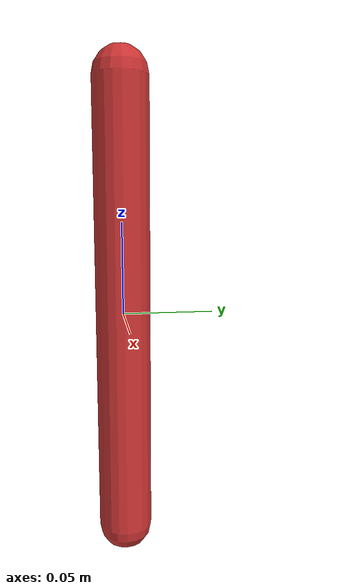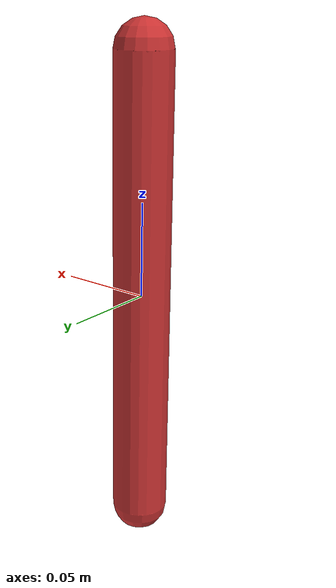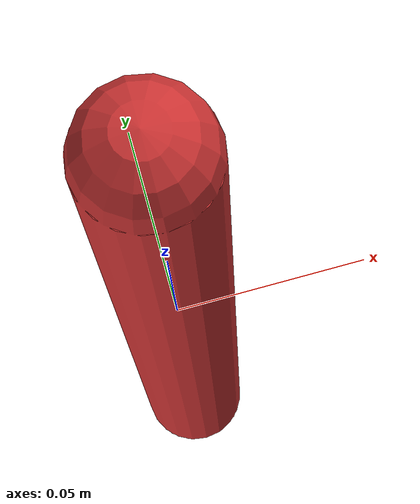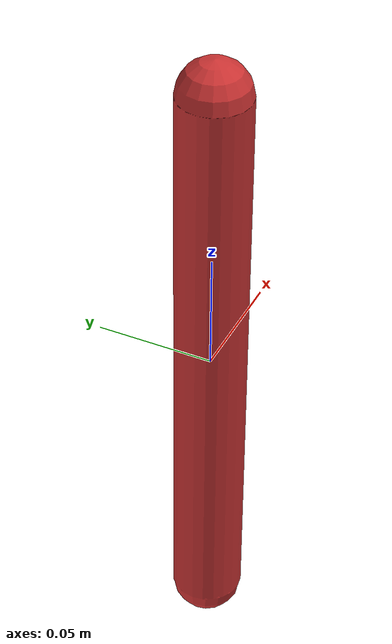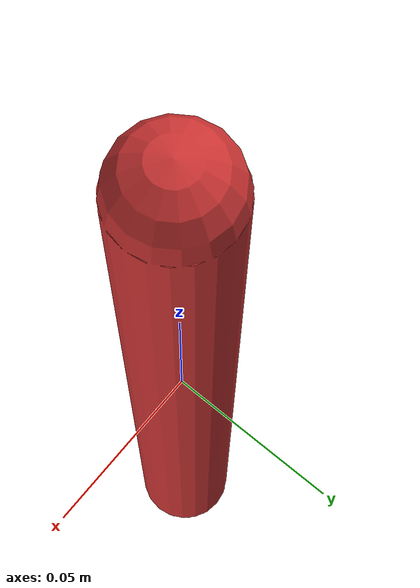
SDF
<?xml version="1.0"?>
<sdf version="1.7">
  <!-- Model of an oversized pen for the allegro hand -->
  <model name="pen">
    <link name="base_link">
      <inertial>
        <pose>0 0 0 0 0 0</pose>
        <mass>0.1</mass>
        <inertia>
          <ixx>0.00061429</ixx>
          <ixy>0</ixy>
          <ixz>0</ixz>
          <iyy>0.00061429</iyy>
          <iyz>0</iyz>
          <izz>1.1083e-05</izz>
        </inertia>
      </inertial>
      <visual name="pen_visual">
        <geometry>
          <capsule>
            <radius>0.015</radius>
            <length>0.25</length>
          </capsule>
        </geometry>
        <material>
          <diffuse>0.8 0.2 0.2 1</diffuse>
        </material>
      </visual>
      <collision name="pen_collision">
        <geometry>
          <capsule>
            <radius>0.015</radius>
            <length>0.25</length>
          </capsule>
        </geometry>
        <!-- Add compliant hydroelastic contact and friction -->
        <drake:proximity_properties>
          <drake:compliant_hydroelastic/>
          <drake:hydroelastic_modulus>5e7</drake:hydroelastic_modulus>
          <drake:mesh_resolution_hint>0.015</drake:mesh_resolution_hint>
          <drake:hunt_crossley_dissipation>0.1</drake:hunt_crossley_dissipation>
          <drake:mu_dynamic>1.0</drake:mu_dynamic>
        </drake:proximity_properties>
      </collision>
    </link>
  </model>
</sdf>
